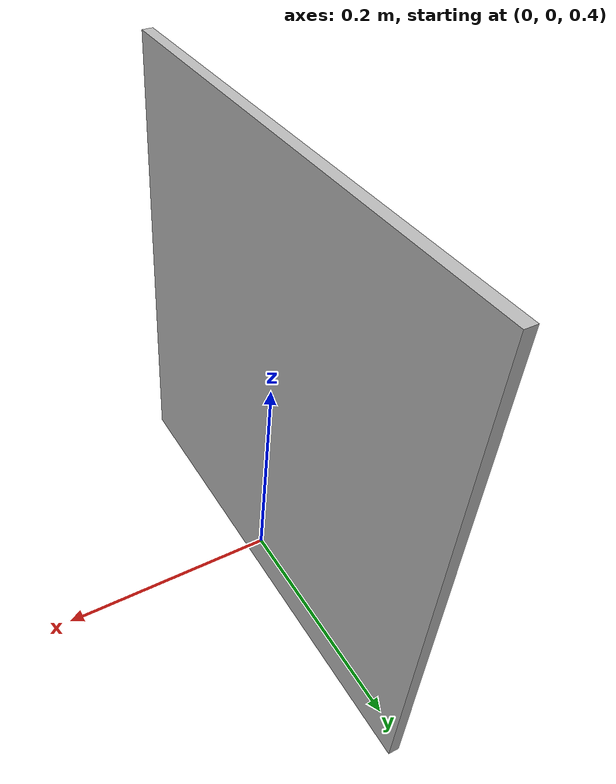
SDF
<?xml version="1.0" ?>
<sdf version="1.6">
  <model name="qr_shelf_a">
    <static>true</static>
    <link name="qr_board_link">
      <pose>0 0 0.6 0 0 0</pose>

      <visual name="qr_visual">
        <geometry>
          <box>
            <size>0.01 0.45 0.45</size>
          </box>
        </geometry>
        <material>
          <script>
            <uri>model://qr_shelf_a/materials/scripts</uri>
            <uri>model://qr_shelf_a/materials/textures</uri>
            <name>QR/ShelfA</name>
          </script>
        </material>
      </visual>

      <collision name="qr_collision">
        <geometry>
          <box>
            <size>0.01 0.45 0.45</size>
          </box>
        </geometry>
      </collision>
    </link>
  </model>
</sdf>
